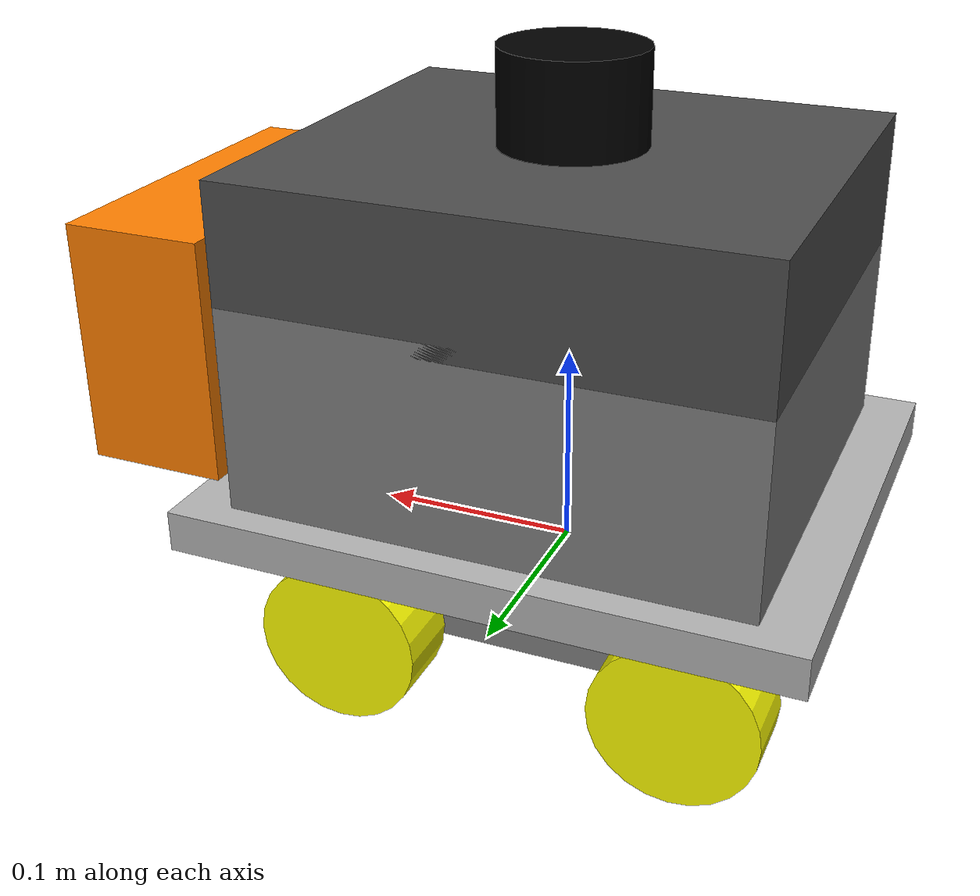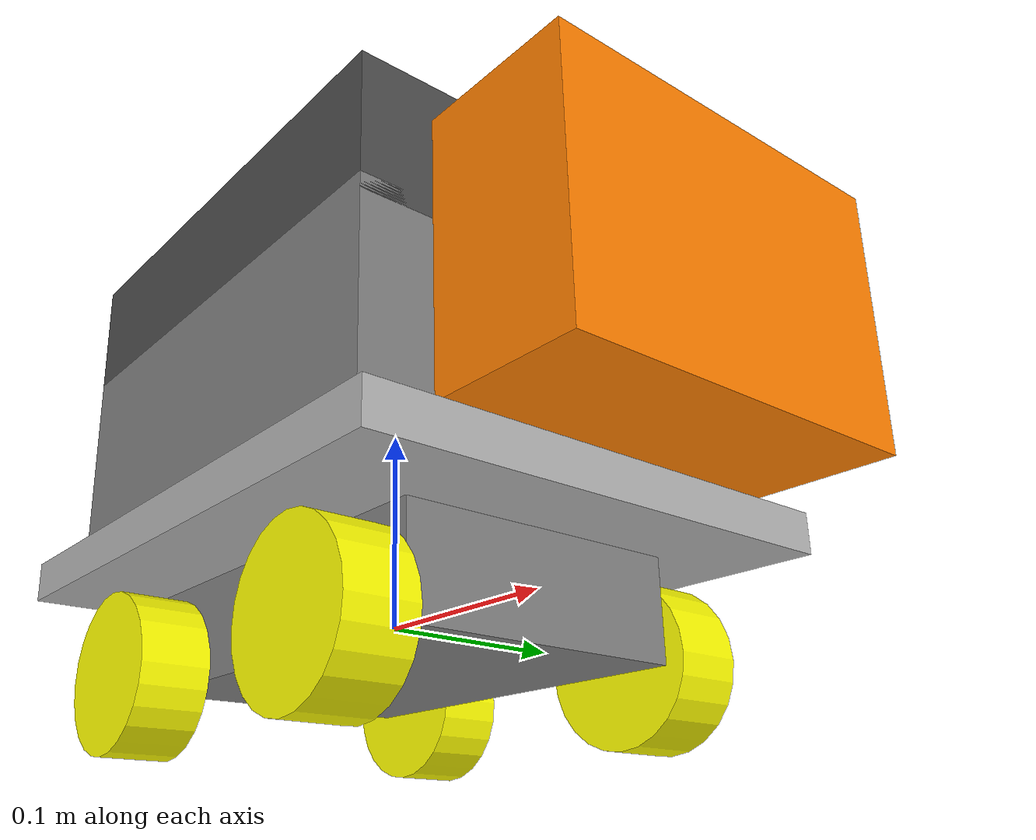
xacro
<?xml version="1.0"?>
<robot xmlns:xacro="http://ros.org/wiki/xacro" name="robot">

<!-- Parameters -->
  <xacro:property name="wheel_radius" value="0.04"/>
  <xacro:property name="wheel_width" value="0.04"/>
  <xacro:property name="base_length" value="0.30"/>
  <xacro:property name="base_width" value="0.25"/>
  <xacro:property name="base_height" value="0.02"/>
  <xacro:property name="second_base_length" value="0.25"/>
  <xacro:property name="second_base_width" value="0.22"/>
  <xacro:property name="second_base_height" value="0.10"/>
  <xacro:property name="third_base_length" value="0.25"/>
  <xacro:property name="third_base_width" value="0.22"/>
  <xacro:property name="third_base_height" value="0.065"/>
  <xacro:property name="lidar_radius" value="0.035"/>
  <xacro:property name="lidar_height" value="0.045"/>

   <gazebo>
    <plugin name="gazebo_ros_control" filename="libgazebo_ros_control.so"/>
  </gazebo>

  <link name="world"></link>

<!-- motor bolck -->
  <link name="base_link">
  <inertial>
      <mass value="5.0"/>
      <origin xyz="0 0 0"/>
      <inertia ixx="0.01" ixy="0.0" ixz="0.0" iyy="0.01" iyz="0.0" izz="0.01"/>
    </inertial>
    <visual>
      <geometry>
        <box size="0.21 0.145 0.05"/>
      </geometry>
      <origin xyz="0 0 0"/>
      <material name="grey">
        <color rgba="0.5 0.5 0.5 1"/>
      </material>
    </visual>
  </link>

  <joint name="base_link_joint" type="fixed">
    <parent link="world"/>
    <child link="base_link"/>
    <origin xyz="0 0 0"/>
  </joint>

<!-- first_base Link -->
  <link name="first_base">
    <visual>
      <geometry>
        <box size="${base_length} ${base_width} ${base_height}"/>
      </geometry>
      <origin xyz="0 0 0.035"/>
      <material name="silver">
        <color rgba="0.7 0.7 0.7 1"/>
      </material>
    </visual>
  </link>

  <joint name="first_base_joint" type="fixed">
    <parent link="base_link"/>
    <child link="first_base"/>
    <origin xyz="0 0 0" rpy="0 0 0"/>
   </joint>

<!-- Second Base -->
  <link name="second_base">
    <visual>
      <geometry>
        <box size="${second_base_length} ${second_base_width} ${second_base_height}"/>
      </geometry>
      <origin xyz="0 0 0.095"/>
      <material name="grey">
        <color rgba="0.5 0.5 0.5 1"/>
      </material>
    </visual>
  </link>

  <joint name="second_base_joint" type="fixed">
    <parent link="first_base"/>
    <child link="second_base"/>
    <origin xyz="0 0 0"/>
  </joint>

<!-- Third Base -->
  <link name="third_base">
    <visual>
      <geometry>
        <box size="${third_base_length} ${third_base_width} ${third_base_height}"/>
      </geometry>
      <origin xyz="0 0 0.17"/>
      <material name="dark_grey">
        <color rgba="0.3 0.3 0.3 1"/>
      </material>
    </visual>
  </link>

  <joint name="third_base_joint" type="fixed">
    <parent link="second_base"/>
    <child link="third_base"/>
    <origin xyz="0 0 0"/>
  </joint>

<!-- Lidar -->
  <link name="lidar">
    <visual>
      <geometry>
        <cylinder length="${lidar_height}" radius="${lidar_radius}"/>
      </geometry>
      <origin xyz="0 0 0.16"/>
      <material name="black">
        <color rgba="0 0 0 1"/>
      </material>
    </visual>
  </link>

  <joint name="lidar_joint" type="fixed">
    <parent link="third_base"/>
    <child link="lidar"/>
    <origin xyz="0 0 ${third_base_height}"/>
  </joint>

<!-- Pan Servo -->
  <link name="pan_servo">
    <visual>
      <geometry>
        <box size="0.07 0.18 0.12"/>
      </geometry>
      <origin xyz="0.08 0 0.04"/>
      <material name="orange">
        <color rgba="1 0.5 0 1"/>
      </material>
    </visual>
  </link>

  <joint name="pan_joint" type="fixed">
    <parent link="base_link"/>
    <child link="pan_servo"/>
    <origin xyz="0.1 0 ${third_base_height}"/>
    <axis xyz="0 0 1"/>
    <limit effort="1" velocity="1" lower="-3.1416" upper="3.1416"/>
  </joint>

<!--Wheels-->
  <!-- This is the back right wheel of the robot -->
   <joint name="wheel1_joint" type="continuous" >
        <parent link="base_link"/>
        <child  link="wheel1_link" />
        <origin xyz="-0.09 -0.09 -0.02" rpy="0 0 0" />
        <axis xyz="0 1 0"/>
    </joint>
    <link name="wheel1_link">
        <visual>
            <origin rpy="1.570795 0 0" xyz="0 0 0"/>
            <geometry>
                <cylinder length="0.035" radius="0.04"/>
            </geometry>

            <material name="yellow">
                <color rgba="1 1 0 1"/>
            </material>
        </visual>
    </link>

    <!-- This is the back left wheel of the robot -->
    <joint name="wheel2_joint" type="continuous" >
        <parent link="base_link"/>
        <child  link="wheel2_link" />
        <origin xyz="-0.09 0.09 -0.02" rpy="0 0 0" />
        <axis xyz="0 1 0"/>
    </joint>
    <link name="wheel2_link">
        <visual>
            <origin rpy="1.570795 0 0" xyz="0 0 0"/>
            <geometry>
                <cylinder length="0.035" radius="0.04"/>
            </geometry>

            <material name="yellow">
                <color rgba="1 1 0 1"/>
            </material>
        </visual>
    </link>

    <!-- This is the front right wheel of the robot -->
    <joint name="wheel3_joint" type="continuous" >
        <parent link="base_link"/>
        <child  link="wheel3_link" />
        <origin xyz="0.075 -0.09 -0.02" rpy="0 0 0" />
        <axis xyz="0 1 0"/>
    </joint>
    <link name="wheel3_link">
        <visual>
            <origin rpy="1.570795 0 0" xyz="0 0 0"/>
            <geometry>
                <cylinder length="0.035" radius="0.04"/>
            </geometry>

            <material name="yellow">
                <color rgba="1 1 0 1"/>
            </material>
        </visual>
    </link>

    <!-- This is the front left wheel of the robot -->
    <joint name="wheel4_joint" type="continuous" >
        <parent link="base_link"/>
        <child  link="wheel4_link" />
        <origin xyz="0.075 0.09 -0.02" rpy="0 0 0" />
        <axis xyz="0 1 0"/>
    </joint>
    <link name="wheel4_link">
        <visual>
            <origin rpy="1.570795 0 0" xyz="0 0 0"/>
            <geometry>
                <cylinder length="0.035" radius="0.04"/>
            </geometry>

            <material name="yellow">
                <color rgba="1 1 0 1"/>
            </material>
        </visual>
    </link>

</robot>
